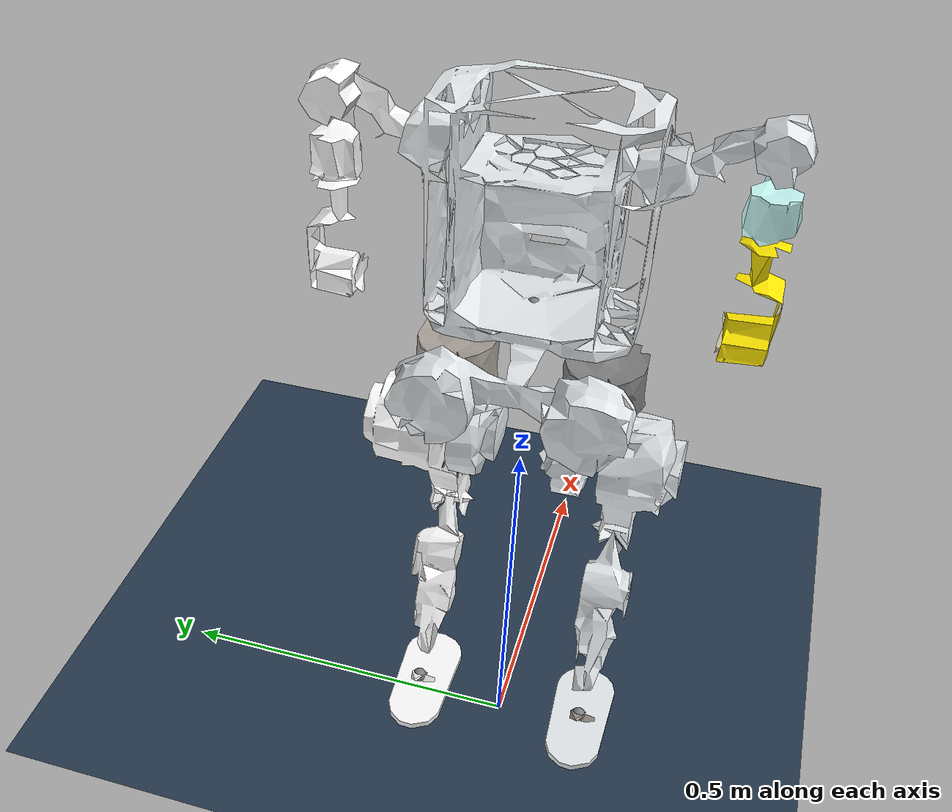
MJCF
<mujoco model="Dora2">
  <compiler angle="radian" meshdir="../meshes" />

  <!-- 关节和接触点的最大数量 -->
  <size njmax="500" nconmax="100" />

  <!-- 定义视觉渲染的设置，阴影大小和近裁剪平面 -->
  <visual>
    <quality shadowsize='4096'/>
    <map znear='0.05'/>
  </visual>

  <!-- 定义了模型中所有元素的默认属性，比如关节的限制、电机的控制限制、几何体的物理属性、障碍物属性等 -->
  <default>
    <joint limited='true'/>
    <motor ctrllimited='true'/>
    <geom condim='4' contype="1" conaffinity="15" solref='0.001 2' friction='0.9 0.2 0.2'/>
    <equality solref='0.001 2'/>
    <default class='visualgeom'>
      <geom material='visualgeom' condim='1' contype='0' conaffinity='0'/>
    </default>

    <default class='leg_joint_param'>
      <joint damping="0.01" frictionloss="0.01" armature="0.01"/>
    </default>

    <default class='obstacle'>
      <geom condim='3' contype='1' conaffinity='15' rgba="0.8 0.8 0.8 1"/>
    </default>

  </default>

  <!-- 资产定义 -->
  <asset>
    <!-- 天空盒纹理，模拟环境的远景背景。gradient表示纹理是渐变的 -->
    <texture type="skybox" builtin="gradient" rgb1="0.3 0.5 0.7" rgb2="0 0 0" width="512" height="512"/>
    <!-- 2D棋盘格纹理 -->
    <texture name="texplane" type="2d" builtin="checker" rgb1=".2 .3 .4" rgb2=".1 0.15 0.2" width="512" height="512" mark="cross" markrgb=".8 .8 .8"/>
    <texture name="texplane2" type="2d" builtin="checker" rgb1="1 0.3137 0.1843" rgb2="0.0 0.30196 0.38039" width="512" height="512" mark="cross" markrgb=".8 .8 .8"/>

    <!-- 材质定义。reflectance属性定义了材质的反射率。texrepeat属性定义了纹理在几何体上的重复次数，而texuniform是一个布尔值，表示是否在所有几何体上均匀地应用纹理 -->
    <material name="matplane" reflectance="0." texture="texplane" texrepeat="1 1" texuniform="true"/>
    <material name="matplane2" reflectance="0.1" texture="texplane2" texrepeat="1 1" texuniform="true"/>

    <!-- 自定义材质 -->
    <material name='visualgeom' rgba='0.5 0.9 0.2 1'/>
    <mesh name="base_link" file="base_link.STL"/>
    <mesh name="l_arm_shoulder_pitch_Link" file="l_arm_shoulder_pitch_Link.STL"/>
    <mesh name="l_arm_shoulder_roll_Link" file="l_arm_shoulder_roll_Link.STL"/>
    <mesh name="l_arm_shoulder_yaw_Link" file="l_arm_shoulder_yaw_Link.STL"/>
    <mesh name="l_arm_elbow_Link" file="l_arm_elbow_Link.STL"/>
    <mesh name="r_arm_shoulder_pitch_Link" file="r_arm_shoulder_pitch_Link.STL"/>
    <mesh name="r_arm_shoulder_roll_Link" file="r_arm_shoulder_roll_Link.STL"/>
    <mesh name="r_arm_shoulder_yaw_Link" file="r_arm_shoulder_yaw_Link.STL"/>
    <mesh name="r_arm_elbow_Link" file="r_arm_elbow_Link.STL"/>
    <mesh name="l_leg_hip_roll_Link" file="l_leg_hip_roll_Link.STL"/>
    <mesh name="l_leg_hip_yaw_Link" file="l_leg_hip_yaw_Link.STL"/>
    <mesh name="l_leg_hip_pitch_Link" file="l_leg_hip_pitch_Link.STL"/>
    <mesh name="l_leg_knee_Link" file="l_leg_knee_Link.STL"/>
    <mesh name="l_leg_ankle_pitch_Link" file="l_leg_ankle_pitch_Link.STL"/>
    <mesh name="l_leg_ankle_roll_Link" file="l_leg_ankle_roll_Link.STL"/>
    <mesh name="r_leg_hip_roll_Link" file="r_leg_hip_roll_Link.STL"/>
    <mesh name="r_leg_hip_yaw_Link" file="r_leg_hip_yaw_Link.STL"/>
    <mesh name="r_leg_hip_pitch_Link" file="r_leg_hip_pitch_Link.STL"/>
    <mesh name="r_leg_knee_Link" file="r_leg_knee_Link.STL"/>
    <mesh name="r_leg_ankle_pitch_Link" file="r_leg_ankle_pitch_Link.STL"/>
    <mesh name="r_leg_ankle_roll_Link" file="r_leg_ankle_roll_Link.STL"/>

  </asset>
  <worldbody>
    <light directional="true" diffuse=".4 .4 .4" specular="0.1 0.1 0.1" pos="0 0 5.0" dir="0 0 -1" castshadow="false"/>
    <light directional="true" diffuse=".6 .6 .6" specular="0.2 0.2 0.2" pos="0 0 4" dir="0 0 -1"/>
    <geom name="ground" type="plane" size="0 0 1" pos="0.001 0 0" quat="1 0 0 0" material="matplane" condim="1" conaffinity='15'/>
    <body name="base_link" pos="0 0 0.73">#change
      <inertial pos="-0.026491 -5.0156e-08 0.050159" quat="0.999991 0.0042832 -0.000430393 -4.00202e-05" mass="10.009" diaginertia="0.034427 0.0235031 0.0220379"/>
      <geom type="mesh" contype="0" conaffinity="0" group="1" density="0" rgba="0.89804 0.91765 0.92941 1" mesh="base_link"/>
      <geom type="mesh" rgba="0.89804 0.91765 0.92941 1" mesh="base_link" class="visualgeom"/>
      <freejoint name="root" />
      <site name='imu' size='0.01' pos='0.0 0 0.0'/>
      <body name="l_arm_shoulder_pitch_Link" pos="0 0.16535 0.20168" quat="0.819161 -0.573564 0 0">
        <inertial pos="-0.0032277 -0.00090287 0.064029" quat="0.995945 -0.0426167 0.0788282 -0.00794725" mass="0.47485" diaginertia="0.000267127 0.000232009 0.000178094"/>
        <geom type="mesh" contype="0" conaffinity="0" group="1" density="0" rgba="1 1 1 1" mesh="l_arm_shoulder_pitch_Link"/>
        <geom type="mesh" rgba="1 1 1 1" mesh="l_arm_shoulder_pitch_Link" class="visualgeom"/>
        <body name="l_arm_shoulder_roll_Link" pos="0 0 0.07625" quat="0.819161 0.573564 0 0">
          <inertial pos="0.00482434 -0.000218754 -0.0666849" quat="0.971199 -0.0307217 0.236148 0.00792513" mass="0.369997" diaginertia="0.000211172 0.000200364 0.000146377"/>
          <geom type="mesh" contype="0" conaffinity="0" group="1" density="0" rgba="1 1 1 1" mesh="l_arm_shoulder_roll_Link"/>
          <geom type="mesh" rgba="1 1 1 1" mesh="l_arm_shoulder_roll_Link" class="visualgeom"/>
          <body name="l_arm_shoulder_yaw_Link" pos="0 0 -0.108">
            <inertial pos="-4.03283e-05 0.0024581 -0.0964013" quat="0.704697 0.0547693 -0.0224546 0.707035" mass="0.385684" diaginertia="0.000170986 0.0001408 0.000126399"/>
            <geom type="mesh" contype="0" conaffinity="0" group="1" density="0" rgba="1 1 1 1" mesh="l_arm_shoulder_yaw_Link"/>
            <geom type="mesh" rgba="1 1 1 1" mesh="l_arm_shoulder_yaw_Link" class="visualgeom"/>
            <body name="l_arm_elbow_Link" pos="0 -0.017 -0.11875">
              <inertial pos="0.000783883 -0.00711646 -0.000187671" quat="0.437811 0.555063 0.555267 0.43807" mass="0.0234686" diaginertia="9.07837e-06 5.10608e-06 4.66978e-06"/>
              <geom type="mesh" contype="0" conaffinity="0" group="1" density="0" rgba="1 1 1 1" mesh="l_arm_elbow_Link"/>
              <geom type="mesh" rgba="1 1 1 1" mesh="l_arm_elbow_Link" class="visualgeom"/>
            </body>
          </body>
        </body>
      </body>
      <body name="r_arm_shoulder_pitch_Link" pos="0 -0.16535 0.20168" quat="0.819161 0.573564 0 0">
        <inertial pos="-0.00322766 0.000902867 0.0640292" quat="0.995945 0.0426211 0.0788317 0.00794663" mass="0.474849" diaginertia="0.000267126 0.000232009 0.000178099"/>
        <geom type="mesh" contype="0" conaffinity="0" group="1" density="0" rgba="0.898039 0.917647 0.929412 1" mesh="r_arm_shoulder_pitch_Link"/>
        <geom type="mesh" rgba="0.898039 0.917647 0.929412 1" mesh="r_arm_shoulder_pitch_Link" class="visualgeom"/>
        <body name="r_arm_shoulder_roll_Link" pos="0 0 0.07625" quat="0.819161 -0.573564 0 0">
          <inertial pos="0.00482435 0.000218646 -0.0666849" quat="0.971199 0.0307083 0.236148 -0.00795235" mass="0.369997" diaginertia="0.000211172 0.000200364 0.000146377"/>
          <geom type="mesh" contype="0" conaffinity="0" group="1" density="0" rgba="0.780392 0.972549 0.956863 1" mesh="r_arm_shoulder_roll_Link"/>
          <geom type="mesh" rgba="0.780392 0.972549 0.956863 1" mesh="r_arm_shoulder_roll_Link" class="visualgeom"/>
          <body name="r_arm_shoulder_yaw_Link" pos="0 0 -0.108">
            <inertial pos="-4.033e-05 -0.0024581 -0.096401" quat="0.707035 -0.0224505 0.0547673 0.704697" mass="0.38568" diaginertia="0.00017099 0.0001408 0.0001264"/>
            <geom type="mesh" contype="0" conaffinity="0" group="1" density="0" rgba="1 0.90588 0 1" mesh="r_arm_shoulder_yaw_Link"/>
            <geom type="mesh" rgba="1 0.90588 0 1" mesh="r_arm_shoulder_yaw_Link" class="visualgeom"/>
            <body name="r_arm_elbow_Link" pos="0 0.017 -0.11875">
              <inertial pos="0.000783883 0.00711646 -0.000187671" quat="0.43807 0.555267 0.555063 0.437811" mass="0.0234686" diaginertia="9.07837e-06 5.10608e-06 4.66978e-06"/>
              <geom type="mesh" contype="0" conaffinity="0" group="1" density="0" rgba="0.972549 0.945098 0.780392 1" mesh="r_arm_elbow_Link"/>
              <geom type="mesh" rgba="0.972549 0.945098 0.780392 1" mesh="r_arm_elbow_Link" class="visualgeom"/>
            </body>
          </body>
        </body>
      </body>
      <body name="l_leg_hip_roll_Link" pos="-0.0792 0.09002 -0.085">
        <inertial pos="0.073997 -2.6118e-05 -0.0038831" quat="0.00777235 0.708763 -0.00795807 0.705359" mass="1.2237" diaginertia="0.00211032 0.00120146 0.00108742"/>
        <joint name="l_leg_hip_roll_joint" pos="0 0 0" axis="1 0 0" limited="true" range="-0.3 1" class="leg_joint_param"/>
        <geom type="mesh" contype="0" conaffinity="0" group="1" density="0" rgba="0.64706 0.61961 0.58824 1" mesh="l_leg_hip_roll_Link"/>
        <geom type="mesh" rgba="0.64706 0.61961 0.58824 1" mesh="l_leg_hip_roll_Link" class="visualgeom"/>
        <body name="l_leg_hip_yaw_Link" pos="0.0815 0 -0.0375">
          <inertial pos="0.00018298 -0.018275 -0.069994" quat="0.707428 0.00572459 0.00438224 0.706749" mass="1.5439" diaginertia="0.00287641 0.00161813 0.00145186"/>
          <joint name="l_leg_hip_yaw_joint" pos="0 0 0" axis="0 0 1" limited="true" range="-0.75 0.52" class="leg_joint_param"/>
          <geom type="mesh" contype="0" conaffinity="0" group="1" density="0" rgba="0.89804 0.91765 0.92941 1" mesh="l_leg_hip_yaw_Link"/>
          <geom type="mesh" rgba="0.89804 0.91765 0.92941 1" mesh="l_leg_hip_yaw_Link" class="visualgeom"/>
          <body name="l_leg_hip_pitch_Link" pos="0 0 -0.076" quat="1 0 -0.25 0">#change
            <inertial pos="0.0026305 0.0505925 -0.0509281" quat="0.70606 0.00104966 -0.00926912 0.708091" mass="2.6378" diaginertia="0.0146686 0.0128065 0.00217733"/>
            <joint name="l_leg_hip_pitch_joint" pos="0 0 0" axis="0 1 0" limited="true" range="-1.5 1.5" class="leg_joint_param"/>
            <geom type="mesh" contype="0" conaffinity="0" group="1" density="0" rgba="1 1 1 1" mesh="l_leg_hip_pitch_Link"/>
            <geom type="mesh" rgba="1 1 1 1" mesh="l_leg_hip_pitch_Link" class="visualgeom"/>
            <body name="l_leg_knee_Link" pos="0 0.032659 -0.27" quat="1 0 0.59 0"> #change
              <inertial pos="0.0026677 0.0022197 -0.12804" quat="0.99105 -0.0134819 0.00445742 -0.132731" mass="1.3457" diaginertia="0.00225137 0.00224427 0.000462333"/>
              <joint name="l_leg_knee_joint" pos="0 0 0" axis="0 1 0" limited="true" range="0.0 2.01" class="leg_joint_param"/>
              <geom type="mesh" contype="0" conaffinity="0" group="1" density="0" rgba="1 1 1 1" mesh="l_leg_knee_Link"/>
              <geom type="mesh" rgba="1 1 1 1" mesh="l_leg_knee_Link" class="visualgeom"/>
              <body name="l_leg_ankle_pitch_Link" pos="0 0 -0.28">
                <inertial pos="0.0010416 3.8669e-09 -9.735e-10" quat="9.10252e-07 0.707107 -9.10252e-07 0.707107" mass="0.089954" diaginertia="2.1929e-05 1.4297e-05 1.1624e-05"/>
                <joint name="l_leg_ankle_pitch_joint" pos="0 0 0" axis="0 1 0" limited="true" range="-0.8 0.56" class="leg_joint_param"/>
                <geom type="mesh" contype="0" conaffinity="0" group="1" density="0" rgba="1 1 1 1" mesh="l_leg_ankle_pitch_Link"/>
                <geom type="mesh" rgba="1 1 1 1" mesh="l_leg_ankle_pitch_Link" class="visualgeom"/>
                <body name="l_leg_ankle_roll_Link" quat="1 0 -0.3 0"> #change
                  <inertial pos="0.00956352 2.52051e-05 -0.0277821" quat="4.0865e-05 0.717327 0.000173041 0.696736" mass="0.442108" diaginertia="0.000870926 0.00072413 0.000178854"/>
                  <site name="L_leg_foot_contact_ground" pos="0 0 0" size="0.01"/>
                  <joint name="l_leg_ankle_roll_joint" pos="0 0 0" axis="1 0 0" limited="true" range="-0.5 0.5" class="leg_joint_param"/>
                  <geom type="mesh" contype="0" conaffinity="0" group="1" density="0" rgba="1 1 1 1" mesh="l_leg_ankle_roll_Link"/>
                  <geom type="mesh" rgba="1 1 1 1" mesh="l_leg_ankle_roll_Link"/>
                </body>
              </body>
            </body>
          </body>
        </body>
      </body>
      <body name="r_leg_hip_roll_Link" pos="-0.0792 -0.08998 -0.085">
        <inertial pos="0.073997 -2.6118e-05 -0.00038831" quat="0.00777235 0.708763 -0.00795807 0.705359" mass="1.2237" diaginertia="0.00211032 0.00120146 0.00108742"/>
        <joint name="r_leg_hip_roll_joint" pos="0 0 0" axis="1 0 0" limited="true" range="-1 0.3" class="leg_joint_param"/>
        <geom type="mesh" contype="0" conaffinity="0" group="1" density="0" rgba="0.49804 0.49804 0.49804 1" mesh="r_leg_hip_roll_Link"/>
        <geom type="mesh" rgba="0.49804 0.49804 0.49804 1" mesh="r_leg_hip_roll_Link" class="visualgeom"/>
        <body name="r_leg_hip_yaw_Link" pos="0.0815 0 -0.0375">
          <inertial pos="0.00023924 0.018241 -0.069997" quat="0.707111 0.000239355 0.00158341 0.707101" mass="1.5439" diaginertia="0.00287661 0.0016183 0.00145149"/>
          <joint name="r_leg_hip_yaw_joint" pos="0 0 0" axis="0 0 1" limited="true" range="-1.05 0.75" class="leg_joint_param"/>
          <geom type="mesh" contype="0" conaffinity="0" group="1" density="0" rgba="0.89804 0.91765 0.92941 1" mesh="r_leg_hip_yaw_Link"/>
          <geom type="mesh" rgba="0.89804 0.91765 0.92941 1" mesh="r_leg_hip_yaw_Link" class="visualgeom"/>
          <body name="r_leg_hip_pitch_Link" pos="0 0 -0.076" quat="1 0 -0.25 0">#change
            <inertial pos="0.0026305 -0.0505925 -0.0509281" quat="0.70606 0.00104966 -0.00926912 0.708091" mass="2.6378" diaginertia="0.0146686 0.0128065 0.00217733"/>
            <joint name="r_leg_hip_pitch_joint" pos="0 0 0" axis="0 1 0" limited="true" range="-1.5 1.5" class="leg_joint_param"/>
            <geom type="mesh" contype="0" conaffinity="0" group="1" density="0" rgba="0.89804 0.91765 0.92941 1" mesh="r_leg_hip_pitch_Link"/>
            <geom type="mesh" rgba="0.89804 0.91765 0.92941 1" mesh="r_leg_hip_pitch_Link" class="visualgeom"/>
            <body name="r_leg_knee_Link" pos="0 -0.032659 -0.27" quat="1 0 0.59 0">#change
              <inertial pos="0.0026677 -0.0022197 -0.12804" quat="0.99105 0.0134819 0.00445742 0.132731" mass="1.3457" diaginertia="0.00225137 0.00224427 0.000462333"/>
              <joint name="r_leg_knee_joint" pos="0 0 0" axis="0 1 0" limited="true" range="0.0 2.01" class="leg_joint_param"/>
              <geom type="mesh" contype="0" conaffinity="0" group="1" density="0" rgba="0.89804 0.91765 0.92941 1" mesh="r_leg_knee_Link"/>
              <geom type="mesh" rgba="0.89804 0.91765 0.92941 1" mesh="r_leg_knee_Link" class="visualgeom"/>
              <body name="r_leg_ankle_pitch_Link" pos="0 0 -0.28">
                <inertial pos="0.0010416 -3.8669e-09 -9.735e-10" quat="-9.10252e-07 0.707107 9.10252e-07 0.707107" mass="0.089954" diaginertia="2.1929e-05 1.4297e-05 1.1624e-05"/>
                <joint name="r_leg_ankle_pitch_joint" pos="0 0 0" axis="0 1 0" limited="true" range="-0.8 0.56" class="leg_joint_param"/>
                <geom type="mesh" contype="0" conaffinity="0" group="1" density="0" rgba="0.64706 0.61961 0.58824 1" mesh="r_leg_ankle_pitch_Link"/>
                <geom type="mesh" rgba="0.64706 0.61961 0.58824 1" mesh="r_leg_ankle_pitch_Link" class="visualgeom"/>
                <body name="r_leg_ankle_roll_Link" quat="1 0 -0.3 0"> #change
                  <inertial pos="0.0095635 -2.5209e-05 -0.027782" quat="-4.10163e-05 0.717328 -0.000173027 0.696736" mass="0.44211" diaginertia="0.000870927 0.00072413 0.000178853"/>
                  <site name="R_leg_foot_contact_ground" pos="0 0 0" size="0.01"/>
                  <joint name="r_leg_ankle_roll_joint" pos="0 0 0" axis="1 0 0" limited="true" range="-0.5 0.5" class="leg_joint_param"/>
                  <geom type="mesh" contype="0" conaffinity="0" group="1" density="0" rgba="0.89804 0.91765 0.92941 1" mesh="r_leg_ankle_roll_Link"/>
                  <geom type="mesh" rgba="0.89804 0.91765 0.92941 1" mesh="r_leg_ankle_roll_Link"/>
                </body>
              </body>
            </body>
          </body>
        </body>
      </body>
    </body>
  </worldbody>

  <actuator>
    <motor name="l_leg_hip_roll_joint" joint="l_leg_hip_roll_joint" gear="1" ctrllimited="true" ctrlrange="-40 40"/>
    <motor name="l_leg_hip_yaw_joint" joint="l_leg_hip_yaw_joint" gear="1" ctrllimited="true" ctrlrange="-40 40"/>
    <motor name="l_leg_hip_pitch_joint" joint="l_leg_hip_pitch_joint" gear="1" ctrllimited="true" ctrlrange="-120 120"/>
    <motor name="l_leg_knee_joint" joint="l_leg_knee_joint" gear="1" ctrllimited="true" ctrlrange="-120 120"/>
    <motor name="l_leg_ankle_pitch_joint" joint="l_leg_ankle_pitch_joint" gear="1" ctrllimited="true" ctrlrange="-27 27"/>
    <motor name="l_leg_ankle_roll_joint" joint="l_leg_ankle_roll_joint" gear="1" ctrllimited="true" ctrlrange="-27 27"/>
    <motor name="r_leg_hip_roll_joint" joint="r_leg_hip_roll_joint" gear="1" ctrllimited="true" ctrlrange="-40 40"/>
    <motor name="r_leg_hip_yaw_joint" joint="r_leg_hip_yaw_joint" gear="1" ctrllimited="true" ctrlrange="-40 40"/>
    <motor name="r_leg_hip_pitch_joint" joint="r_leg_hip_pitch_joint" gear="1" ctrllimited="true" ctrlrange="-120 120"/>
    <motor name="r_leg_knee_joint" joint="r_leg_knee_joint" gear="1" ctrllimited="true" ctrlrange="-120 120"/>
    <motor name="r_leg_ankle_pitch_joint" joint="r_leg_ankle_pitch_joint" gear="1" ctrllimited="true" ctrlrange="-27 27"/>
    <motor name="r_leg_ankle_roll_joint" joint="r_leg_ankle_roll_joint" gear="1" ctrllimited="true" ctrlrange="-27 27"/>
  </actuator>

  <sensor>
    <actuatorpos name='l_leg_hip_roll_joint_pos' actuator='l_leg_hip_roll_joint' user='13'/>
    <actuatorpos name='l_leg_hip_yaw_joint_pos' actuator='l_leg_hip_yaw_joint' user='13'/>
    <actuatorpos name='l_leg_hip_pitch_joint_pos' actuator='l_leg_hip_pitch_joint' user='13'/>
    <actuatorpos name='l_leg_knee_joint_pos' actuator='l_leg_knee_joint' user='13'/>
    <actuatorpos name='l_leg_ankle_pitch_joint_pos' actuator='l_leg_ankle_pitch_joint' user='13'/>
    <actuatorpos name='l_leg_ankle_roll_joint_pos' actuator='l_leg_ankle_roll_joint' user='13'/>
    <actuatorpos name='r_leg_hip_roll_joint_pos' actuator='r_leg_hip_roll_joint' user='13'/>
    <actuatorpos name='r_leg_hip_yaw_joint_pos' actuator='r_leg_hip_yaw_joint' user='13'/>
    <actuatorpos name='r_leg_hip_pitch_joint_pos' actuator='r_leg_hip_pitch_joint' user='13'/>
    <actuatorpos name='r_leg_knee_joint_pos' actuator='r_leg_knee_joint' user='13'/>
    <actuatorpos name='r_leg_ankle_pitch_joint_pos' actuator='r_leg_ankle_pitch_joint' user='13'/>
    <actuatorpos name='r_leg_ankle_roll_joint_pos' actuator='r_leg_ankle_roll_joint' user='13'/>

    <actuatorvel name='l_leg_hip_roll_joint_vel' actuator='l_leg_hip_roll_joint' user='13'/>
    <actuatorvel name='l_leg_hip_yaw_joint_vel' actuator='l_leg_hip_yaw_joint' user='13'/>
    <actuatorvel name='l_leg_hip_pitch_joint_vel' actuator='l_leg_hip_pitch_joint' user='13'/>
    <actuatorvel name='l_leg_knee_joint_vel' actuator='l_leg_knee_joint' user='13'/>
    <actuatorvel name='l_leg_ankle_pitch_joint_vel' actuator='l_leg_ankle_pitch_joint' user='13'/>
    <actuatorvel name='l_leg_ankle_roll_joint_vel' actuator='l_leg_ankle_roll_joint' user='13'/>
    <actuatorvel name='r_leg_hip_roll_joint_vel' actuator='r_leg_hip_roll_joint' user='13'/>
    <actuatorvel name='r_leg_hip_yaw_joint_vel' actuator='r_leg_hip_yaw_joint' user='13'/>
    <actuatorvel name='r_leg_hip_pitch_joint_vel' actuator='r_leg_hip_pitch_joint' user='13'/>
    <actuatorvel name='r_leg_knee_joint_vel' actuator='r_leg_knee_joint' user='13'/>
    <actuatorvel name='r_leg_ankle_pitch_joint_vel' actuator='r_leg_ankle_pitch_joint' user='13'/>
    <actuatorvel name='r_leg_ankle_roll_joint_vel' actuator='r_leg_ankle_roll_joint' user='13'/>

    <actuatorfrc name='l_leg_hip_roll_joint_frc' actuator='l_leg_hip_roll_joint' user='13' noise='1e-3'/>
    <actuatorfrc name='l_leg_hip_yaw_joint_frc' actuator='l_leg_hip_yaw_joint' user='13' noise='1e-3'/>
    <actuatorfrc name='l_leg_hip_pitch_joint_frc' actuator='l_leg_hip_pitch_joint' user='13' noise='1e-3'/>
    <actuatorfrc name='l_leg_knee_joint_frc' actuator='l_leg_knee_joint' user='13' noise='1e-3'/>
    <actuatorfrc name='l_leg_ankle_pitch_joint_frc' actuator='l_leg_ankle_pitch_joint' user='13' noise='1e-3'/>
    <actuatorfrc name='l_leg_ankle_roll_joint_frc' actuator='l_leg_ankle_roll_joint' user='13' noise='1e-3'/>
    <actuatorfrc name='r_leg_hip_roll_joint_frc' actuator='r_leg_hip_roll_joint' user='13' noise='1e-3'/>
    <actuatorfrc name='r_leg_hip_yaw_joint_frc' actuator='r_leg_hip_yaw_joint' user='13' noise='1e-3'/>
    <actuatorfrc name='r_leg_hip_pitch_joint_frc' actuator='r_leg_hip_pitch_joint' user='13' noise='1e-3'/>
    <actuatorfrc name='r_leg_knee_joint_frc' actuator='r_leg_knee_joint' user='13' noise='1e-3'/>
    <actuatorfrc name='r_leg_ankle_pitch_joint_frc' actuator='r_leg_ankle_pitch_joint' user='13' noise='1e-3'/>
    <actuatorfrc name='r_leg_ankle_roll_joint_frc' actuator='r_leg_ankle_roll_joint' user='13' noise='1e-3'/>

    <force name="L_leg_foot_force" site="L_leg_foot_contact_ground"/>
    <force name="R_leg_foot_force" site="R_leg_foot_contact_ground"/>

    <framequat name='orientation' objtype='site' noise='0.001' objname='imu'/>
    <framepos name='position' objtype='site' noise='0.001' objname='imu'/>
    <gyro name='angular-velocity' site='imu' noise='0.005' cutoff='34.9'/>
    <velocimeter name='linear-velocity' site='imu' noise='0.001' cutoff='30'/>
    <accelerometer name='linear-acceleration' site='imu' noise='0.005' cutoff='157'/>
    <magnetometer name='magnetometer' site='imu'/>

  </sensor>
</mujoco>
